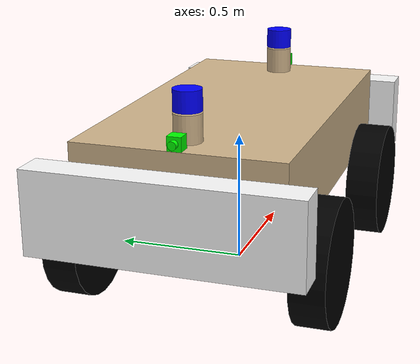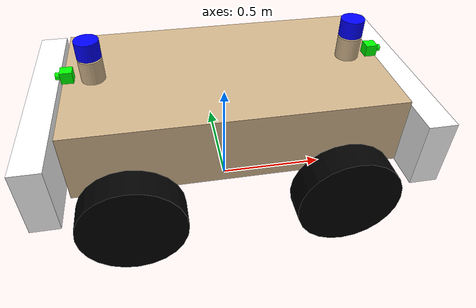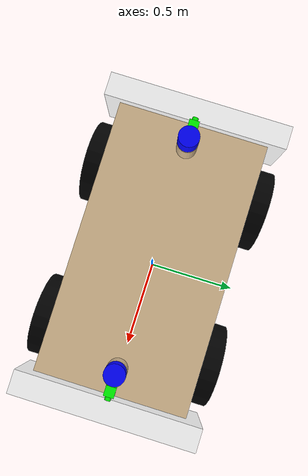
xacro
<?xml version="1.0"?>
<robot xmlns:xacro="http://www.ros.org/wiki/xacro"  name="robot">

    <xacro:include filename="links.xacro" />
    <xacro:include filename="materials.xacro"/>
    <xacro:include filename="joints.xacro"/>
    <xacro:include filename="gazebo_materials.xacro"/>
    <xacro:include filename="gazebo_controls.xacro"/>
    <xacro:include filename="gazebo_sensors.xacro"/>

</robot>

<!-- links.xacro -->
<robot xmlns:xacro="http://www.ros.org/wiki/xacro">

    <!-- =============== CHASSIS ================= -->
    <link name="base_link">
        <inertial>
            <origin xyz="0.000973 0.000007 0.486096" rpy="0 0 0"/>
      	    <mass value="185.1322568023575"/>
      	    <inertia ixx="11.056144" iyy="30.914741" izz="38.217336" ixy="0.00074" ixz="0.00702" iyz="-0.000207"/>
    	</inertial>
    	<visual>
    	    <origin xyz="0.000973 0.000007 0.486096" rpy="0 0 0"/>
            <geometry>
                <box size="1.35 0.75 0.30"/>
            </geometry>
            <material name="desert_tan"/>
        </visual>
        <visual>
    	    <origin xyz="0.55 0.0 0.685" rpy="0 0 0"/>
            <geometry>
                <cylinder radius="0.05" length="0.1"/>
            </geometry>
            <material name="desert_tan"/>
        </visual>
         <visual>
    	    <origin xyz="-0.55 0.0 0.685" rpy="0 0 0"/>
            <geometry>
                <cylinder radius="0.05" length="0.1"/>
            </geometry>
            <material name="desert_tan"/>
        </visual>
        <collision>
            <origin xyz="0.000973 0.000007 0.486096" rpy="0 0 0"/>
            <geometry>
                <box size="1.35 0.75 0.30"/>
            </geometry>
        </collision>
    </link>

    <!-- =========== LEFT-FRONT WHEEL ============== -->
    <link name="l_f_wheel_link">
        <inertial>
            <origin xyz="0 0.11207 0" rpy="0 0 0"/>
            <mass value="7.511940733814897"/>
            <inertia ixx="0.104634" iyy="0.189223" izz="0.104634" ixy="0.0" iyz="0.0" ixz="0.0"/>
        </inertial>
        <visual>
            <origin xyz="0 0.11207 0" rpy="1.5708 0 0"/>
            <geometry>
                <cylinder radius="0.225" length="0.125"/>
            </geometry>
            <material name="black"/>
        </visual>
        <collision>
            <origin xyz="0 0.11207 0" rpy="1.5708 0 0"/>
            <geometry>
                <sphere radius="0.225"/>
            </geometry>
        </collision>
    </link>

    <!-- =========== RIGHT_FRONT WHEEL ============= -->
    <link name="r_f_wheel_link">
        <inertial>
            <origin xyz="0 -0.11207 0" rpy="0 0 0"/>
            <mass value="7.511940733814895"/>
            <inertia ixx="0.104634" iyy="0.189223" izz="0.104634" ixy="0.0" iyz="0.0" ixz="0.0"/>
        </inertial>
        <visual>
            <origin xyz="0 -0.11207 0" rpy="1.5708 0 0"/>
            <geometry>
                <cylinder radius="0.225" length="0.125"/>
            </geometry>
            <material name="black"/>
        </visual>
        <collision>
            <origin xyz="0 -0.11207 0" rpy="1.5708 0 0"/>
            <geometry>
                <sphere radius="0.225"/>
            </geometry>
        </collision>
    </link>

    <!-- =========== LEFT-REAR WHEEL =============== -->
    <link name="l_r_wheel_link">
        <inertial>
            <origin xyz="0 0.11207 0" rpy="0 0 0"/>
            <mass value="7.511940733814895"/>
            <inertia ixx="0.104634" iyy="0.189223" izz="0.104634" ixy="0.0" iyz="0.0" ixz="0.0"/>
        </inertial>
        <visual>
            <origin xyz="0 0.11207 0" rpy="1.5708 0 0"/>
            <geometry>
                <cylinder radius="0.225" length="0.125"/>
            </geometry>
            <material name="black"/>
        </visual>
        <collision>
            <origin xyz="0 0.11207 0" rpy="1.5708 0 0"/>
            <geometry>
                <sphere radius="0.225"/>
            </geometry>
        </collision>
    </link>

    <!-- =========== RIGHT_REAR WHEEL ============== -->
    <link name="r_r_wheel_link">
        <inertial>
            <origin xyz="0 -0.11207 0" rpy="0 0 0"/>
            <mass value="7.511940733814895"/>
            <inertia ixx="0.104634" iyy="0.189223" izz="0.104634" ixy="0.0" iyz="0.0" ixz="0.0"/>
        </inertial>
        <visual>
            <origin xyz="0 -0.11207 0" rpy="1.5708 0 0"/>
            <geometry>
                <cylinder radius="0.225" length="0.125"/>
            </geometry>
            <material name="black"/>
        </visual>
        <collision>
            <origin xyz="0 -0.11207 0" rpy="1.5708 0 0"/>
            <geometry>
                <sphere radius="0.225"/>
            </geometry>
        </collision>
    </link>

    <!-- ============= FRONT BUMPER ================ -->
    <link name="front_bumper_link">
        <inertial>
            <origin xyz="0.071440 -0.225000 -0.018717" rpy="0 0 0"/>
            <mass value="13.822332678327909"/>
            <inertia ixx="1.050773" iyy="0.249928" izz="0.823861" ixy="0.0" iyz="0.0" ixz="0.000988"/>
        </inertial>
        <visual>
            <origin xyz="0.071440 -0.225000 -0.018717" rpy="0 0 0"/>
            <geometry>
                <box size="0.12 0.95 0.3"/>
            </geometry>
            <material name="white"/>
        </visual>
        <collision>
            <origin xyz="0.071440 -0.225000 -0.018717" rpy="0 0 0"/>
            <geometry>
                <box size="0.12 0.95 0.3"/>
            </geometry>
        </collision>
    </link>

    <!-- ============= REAR BUMPER ================= -->
    <link name="rear_bumper_link">
        <inertial>
            <origin xyz="-0.071440 -0.225000 -0.018717" rpy="0 0 0"/>
            <mass value="13.822332678327909"/>
            <inertia ixx="1.050773" iyy="0.249928" izz="0.823861" ixy="0.0" iyz="0.0" ixz="-0.000988"/>
        </inertial>
        <visual>
            <origin xyz="-0.071440 -0.225000 -0.018717" rpy="0 0 0"/>
            <geometry>
                <box size="0.12 0.95 0.3"/>
            </geometry>
            <material name="white"/>
        </visual>
        <collision>
            <origin xyz="-0.071440 -0.225000 -0.018717" rpy="0 0 0"/>
            <geometry>
                <box size="0.12 0.95 0.3"/>
            </geometry>
        </collision>
    </link>

    <!-- ========== FRONT RGBD CAMERA ============== -->
    <link name="f_rgbd_link">
        <inertial>
            <origin xyz="0 0 0.0225" rpy="0 0 0"/>
            <mass value="0.5186547939422563"/>
            <inertia ixx="0.000946" iyy="0.00017" izz="0.000952" ixy="0.0" iyz="0.0" ixz="0.0"/>
        </inertial>
        <visual>
            <geometry>
                <box size="0.05 0.05 0.05"/>
            </geometry>
            <material name="green"/>
        </visual>
        <visual>
            <origin xyz="0.035 0 0" rpy="0 ${pi/2} 0"/>
            <geometry>
                <cylinder radius="0.015" length="0.02"/>
            </geometry>
            <material name="green"/>
        </visual>
        <collision>
            <geometry>
                <box size="0.05 0.05 0.05"/>
            </geometry>
        </collision>
        <collision>
            <origin xyz="0.035 0 0" rpy="0 ${pi/2} 0"/>
            <geometry>
                <cylinder radius="0.015" length="0.02"/>
            </geometry>
        </collision>
    </link>

    <!-- =========== REAR RGBD CAMERA ============== -->
    <link name="r_rgbd_link">
        <inertial>
            <origin xyz="0 0 0.0225" rpy="0 0 0"/>
            <mass value="0.5186547939422562"/>
            <inertia ixx="0.000946" iyy="0.00017" izz="0.000952" ixy="0.0" iyz="0.0" ixz="0.0"/>
        </inertial>
        <visual>
            <geometry>
                <box size="0.05 0.05 0.05"/>
            </geometry>
            <material name="green"/>
        </visual>
        <visual>
            <origin xyz="0.035 0 0" rpy="0 ${pi/2} 0"/>
            <geometry>
                <cylinder radius="0.015" length="0.02"/>
            </geometry>
            <material name="green"/>
        </visual>
        <collision>
            <geometry>
                <box size="0.05 0.05 0.05"/>
            </geometry>
        </collision>
        <collision>
            <origin xyz="0.035 0 0" rpy="0 ${pi/2} 0"/>
            <geometry>
                <cylinder radius="0.015" length="0.02"/>
            </geometry>
        </collision>
  </link>

    <!-- ========== FRONT LIVOX LIDAR ============== -->
    <link name="f_lidar_link">
        <inertial>
            <origin xyz="0 0 0.0375" rpy="0 0 0"/>
            <mass value="1.0750137361502572"/>
            <inertia ixx="0.001176" iyy="0.001176" izz="0.001344" ixy="0.0" iyz="0.0" ixz="0.0"/>
        </inertial>
        <visual>
            <origin xyz="0 0 0.0375" rpy="0 0 0"/>
            <geometry>
                <cylinder radius="0.05" length="0.075"/>
            </geometry>
            <material name="blue"/>
        </visual>
        <collision>
            <origin xyz="0 0 0.0375" rpy="0 0 0"/>
            <geometry>
                <cylinder radius="0.05" length="0.075"/>
            </geometry>
        </collision>
    </link>

    <!-- =========== REAR LIVOX LIDAR =============== -->
    <link name="r_lidar_link">
        <inertial>
            <origin xyz="0 0 0.0375" rpy="0 0 0"/>
            <mass value="1.0750137361502572"/>
            <inertia ixx="0.001176" iyy="0.001176" izz="0.001344" ixy="0.0" iyz="0.0" ixz="0.0"/>
        </inertial>
        <visual>
            <origin xyz="0 0 0.0375" rpy="0 0 0"/>
            <geometry>
                <cylinder radius="0.05" length="0.075"/>
            </geometry>
            <material name="blue"/>
        </visual>
        <collision>
            <origin xyz="0 0 0.0375" rpy="0 0 0"/>
            <geometry>
                <cylinder radius="0.05" length="0.075"/>
            </geometry>
        </collision>
    </link>

</robot>

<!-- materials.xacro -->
<robot xmlns:xacro="http://www.ros.org/wiki/xacro">
    <material name="green">
        <color rgba="0 1 0 1"/>
    </material>
    <material name="blue">
        <color rgba="0 0 1 1"/>
    </material>
    <material name="red">
        <color rgba="1 0 0 1"/>
    </material>
    <material name="white">
        <color rgba="1 1 1 1"/>
    </material>
    <material name="black">
        <color rgba="0 0 0 1"/>
    </material>
    <material name="gray">
        <color rgba="0.5 0.5 0.5 1"/>
    </material>
    <material name="orange">
        <color rgba="1 0.3 0.1 1"/>
    </material>
    <material name="desert_tan">
        <color rgba="0.820 0.710 0.550 1.000"/>
    </material>

</robot>

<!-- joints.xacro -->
<robot xmlns:xacro="http://www.ros.org/wiki/xacro">

    <!-- ================ WHEEL JOINTS ============= -->
    <joint name="l_f_wheel_joint" type="continuous">
        <origin xyz="0.45 0.325 0.225" rpy="0 0 0"/>
        <parent link="base_link"/>
        <child link="l_f_wheel_link"/>
        <axis xyz="0.0 1.0 0.0"/>
        <dynamics damping="1.0" friction="0.1"/>
    </joint>

    <joint name="l_r_wheel_joint" type="continuous">
        <origin xyz="-0.45 0.325 0.225" rpy="0 0 0"/>
        <parent link="base_link"/>
        <child link="l_r_wheel_link"/>
        <axis xyz="0.0 1.0 0.0"/>
        <dynamics damping="1.0" friction="0.1"/>
    </joint>

    <joint name="r_r_wheel_joint" type="continuous">
        <origin xyz="-0.45 -0.325 0.225" rpy="0 0 0"/>
        <parent link="base_link"/>
        <child link="r_r_wheel_link"/>
        <axis xyz="0.0 1.0 0.0"/>
        <dynamics damping="1.0" friction="0.1"/>
    </joint>

    <joint name="r_f_wheel_joint" type="continuous">
        <origin xyz="0.45 -0.325 0.225" rpy="0 0 0"/>
        <parent link="base_link"/>
        <child link="r_f_wheel_link"/>
        <axis xyz="0.0 1.0 0.0"/>
        <dynamics damping="1.0" friction="0.1"/>
    </joint>

    <!-- ================ BUMPER JOINTS ============ -->
    <joint name="front_bumper_joint" type="fixed">
        <origin xyz="0.7 0.225 0.45" rpy="0 0 0"/>
        <parent link="base_link"/>
        <child link="front_bumper_link"/>
    </joint>

    <!-- Mirrors front_bumper_joint across the YZ plane (X negated) to
         counterbalance the front bumper's mass and pull the whole-robot
         center of mass back toward base_link's origin. -->
    <joint name="rear_bumper_joint" type="fixed">
        <origin xyz="-0.7 0.225 0.45" rpy="0 0 0"/>
        <parent link="base_link"/>
        <child link="rear_bumper_link"/>
    </joint>

    <!-- ================ CAMERA JOINTS ============ -->
    <joint name="f_rgbd_joint" type="fixed">
        <origin xyz="0.6525 0.0 0.6625" rpy="0 0 0"/>
        <parent link="base_link"/>
        <child link="f_rgbd_link"/>
    </joint>

    <joint name="r_rgbd_joint" type="fixed">
        <origin xyz="-0.6525 0.0 0.6625" rpy="0 0 ${pi}"/>
        <parent link="base_link"/>
        <child link="r_rgbd_link"/>
    </joint>

    <!-- ================ LIDAR JOINTS ============= -->
    <joint name="f_lidar_joint" type="fixed">
        <origin xyz="0.55 0.0 0.74" rpy="0 0 0"/>
        <parent link="base_link"/>
        <child link="f_lidar_link"/>
    </joint>

    <joint name="r_lidar_joint" type="fixed">
        <origin xyz="-0.55 0.0 0.74" rpy="0 0 ${pi}"/>
        <parent link="base_link"/>
        <child link="r_lidar_link"/>
    </joint>

</robot>
